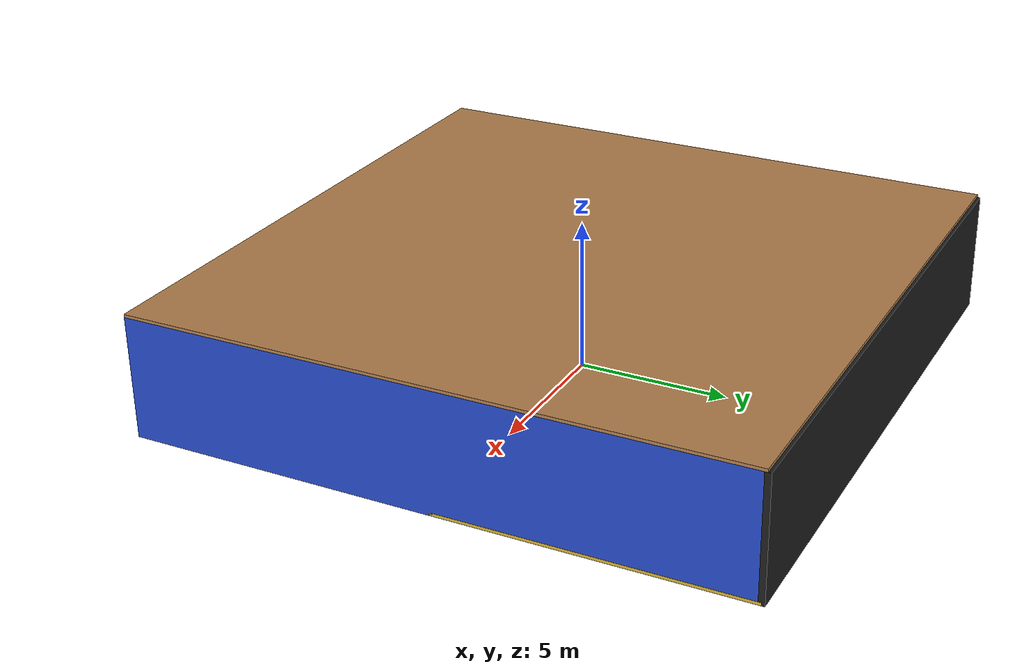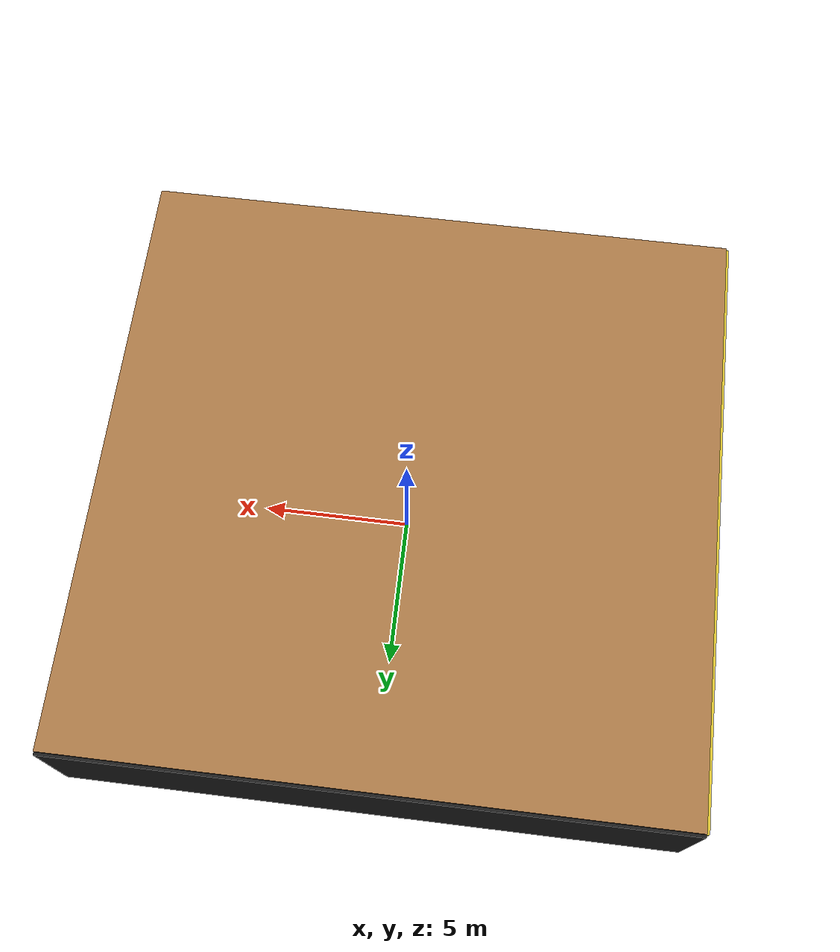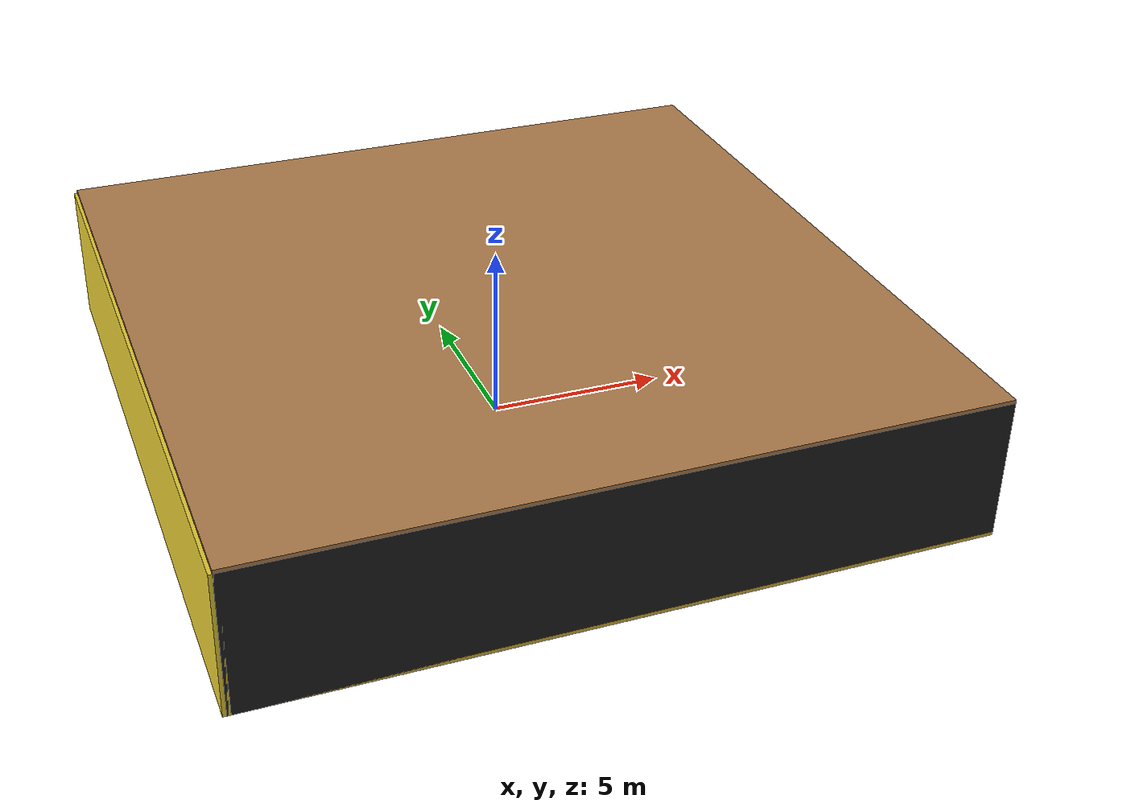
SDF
<sdf version="1.4">
 <world name="default">
  <physics type="ode">
   <max_step_size>0.001</max_step_size>
   <real_time_factor>1</real_time_factor>
   <real_time_update_rate>1000</real_time_update_rate>
   <gravity>0 0 -9.8</gravity>
  </physics>
  <scene><ambient>0.4 0.4 0.4 1</ambient><background>0.7 0.7 0.7 1</background><shadows>1</shadows></scene>
  <model name="Surrounding">
   <static>1</static>
   <link name="Ceiling">
    <collision name="Ceiling_Collision"><geometry><box><size>20 20 0.1</size></box></geometry></collision>
    <visual name="Ceiling_Visual">
     <geometry><box><size>20 20 0.1</size></box></geometry>
     <material>
      <script><uri>file://media/materials/scripts/gazebo.material</uri><name>Gazebo/Wood</name></script>
     </material>
    </visual>
    <pose>0 0 4.05 0 0 0</pose>
   </link>
   <link name="Wall_South">
    <collision name="Wall_South_Collision">
     <geometry><box><size>20 0 4</size></box></geometry>
     <pose>0 0 2 0 -0 0</pose>
    </collision>
    <visual name="Wall_South_Visual">
     <pose>0 0 2 0 -0 0</pose>
     <geometry><box><size>20 0 4</size></box></geometry>
     <material>
      <script><uri>file://media/materials/scripts/gazebo.material</uri><name>Gazebo/FlatBlack</name></script>
     </material>
    </visual>
    <velocity_decay><linear>0</linear><angular>0</angular></velocity_decay>
    <pose>0 -10 0 0 -0 0</pose>
   </link>
   <link name="Wall_East">
    <collision name="Wall_21_Collision">
     <geometry><box><size>20 0 4</size></box></geometry>
     <pose>0 0 2 0 -0 0</pose>
    </collision>
    <visual name="Wall_21_Visual">
     <pose>0 0 2 0 -0 0</pose>
     <geometry><box><size>20 0 4</size></box></geometry>
     <material>
      <script><uri>file://media/materials/scripts/gazebo.material</uri><name>Gazebo/BlueLaser</name></script>
     </material>
    </visual>
    <velocity_decay><linear>0</linear><angular>0</angular></velocity_decay>
    <pose>10 0 0 0 -0 1.5708</pose>
   </link>
   <link name="Wall_North">
    <collision name="Wall_22_Collision">
     <geometry><box><size>20 0.2 4</size></box></geometry>
     <pose>0 0 2 0 -0 0</pose>
    </collision>
    <visual name="Wall_22_Visual">
     <pose>0 0 2 0 -0 0</pose>
     <geometry><box><size>20 0.2 4</size></box></geometry>
     <material>
      <script><uri>file://media/materials/scripts/gazebo.material</uri><name>Gazebo/Black</name></script>
     </material>
    </visual>
    <velocity_decay><linear>0</linear><angular>0</angular></velocity_decay>
    <pose>0 10 0 0 -0 0</pose>
   </link>
   <link name="Wall_West">
    <collision name="Wall_23_Collision">
     <geometry><box><size>20 0.2 4</size></box></geometry>
     <pose>0 0 2 0 -0 0</pose>
    </collision>
    <visual name="Wall_23_Visual">
     <pose>0 0 2 0 -0 0</pose>
     <geometry><box><size>20 0.2 4</size></box></geometry>
     <material>
      <script><uri>file://media/materials/scripts/gazebo.material</uri><name>Gazebo/ZincYellow</name></script>
     </material>
    </visual>
    <velocity_decay><linear>0</linear><angular>0</angular></velocity_decay>
    <pose>-10 0 0 0 0 -1.5708</pose>
   </link>
   <link name="Ground_link">
    <collision name="collision">
     <pose>0 0 .05 0 -0 0</pose>
     <geometry><box><size>20 20 0.1</size></box></geometry>
    </collision>
    <visual name="visual">
     <pose>0 0 .05 0 -0 0</pose>
     <geometry><box><size>20 20 0.1</size></box></geometry>
     <material>
      <script><uri>file://media/materials/scripts/gazebo.material</uri><name>Gazebo/Gold</name></script>
     </material>
    </visual>
   </link>
   <static>1</static>
  </model>
  <spherical_coordinates>
   <surface_model>EARTH_WGS84</surface_model>
   <latitude_deg>0</latitude_deg>
   <longitude_deg>0</longitude_deg>
   <elevation>0</elevation>
   <heading_deg>0</heading_deg>
  </spherical_coordinates>
  <light name="lightball_0" type="diffuse">
   <diffuse>0.8 0.8 0.8 1</diffuse>
   <specular>0.2 0.2 0.2 1</specular>
   <attenuation>
    <range>100</range>
    <constant>0.7</constant>
    <linear>0.01</linear>
    <quadratic>0.001</quadratic>
   </attenuation>
   <direction>-0.5 0.1 -0.9</direction>
   <pose>0.601257638304 -1.1249035366 0.713054447373 0 0 0</pose>
  </light>
  <light name="lightball_1" type="diffuse">
   <diffuse>0.8 0.8 0.8 1</diffuse>
   <specular>0.2 0.2 0.2 1</specular>
   <attenuation>
    <range>100</range>
    <constant>0.7</constant>
    <linear>0.01</linear>
    <quadratic>0.001</quadratic>
   </attenuation>
   <direction>-0.5 0.1 -0.9</direction>
   <pose>2.07753472512 7.84640433807 2.03712075737 0 0 0</pose>
  </light>
  <light name="lightball_2" type="diffuse">
   <diffuse>0.8 0.8 0.8 1</diffuse>
   <specular>0.2 0.2 0.2 1</specular>
   <attenuation>
    <range>100</range>
    <constant>0.7</constant>
    <linear>0.01</linear>
    <quadratic>0.001</quadratic>
   </attenuation>
   <direction>-0.5 0.1 -0.9</direction>
   <pose>3.55529601674 -3.44534934964 1.08589354387 0 0 0</pose>
  </light>
  <light name="lightball_3" type="diffuse">
   <diffuse>0.8 0.8 0.8 1</diffuse>
   <specular>0.2 0.2 0.2 1</specular>
   <attenuation>
    <range>100</range>
    <constant>0.7</constant>
    <linear>0.01</linear>
    <quadratic>0.001</quadratic>
   </attenuation>
   <direction>-0.5 0.1 -0.9</direction>
   <pose>7.1232265305 9.28100820415 2.77369148435 0 0 0</pose>
  </light>
  <light name="lightball_4" type="diffuse">
   <diffuse>0.8 0.8 0.8 1</diffuse>
   <specular>0.2 0.2 0.2 1</specular>
   <attenuation>
    <range>100</range>
    <constant>0.7</constant>
    <linear>0.01</linear>
    <quadratic>0.001</quadratic>
   </attenuation>
   <direction>-0.5 0.1 -0.9</direction>
   <pose>-6.26456457899 3.49975045407 1.6484948291 0 0 0</pose>
  </light>
  <light name="lightball_5" type="diffuse">
   <diffuse>0.8 0.8 0.8 1</diffuse>
   <specular>0.2 0.2 0.2 1</specular>
   <attenuation>
    <range>100</range>
    <constant>0.7</constant>
    <linear>0.01</linear>
    <quadratic>0.001</quadratic>
   </attenuation>
   <direction>-0.5 0.1 -0.9</direction>
   <pose>-1.20062926159 -9.35260276458 3.88008102679 0 0 0</pose>
  </light>
  <light name="lightball_6" type="diffuse">
   <diffuse>0.8 0.8 0.8 1</diffuse>
   <specular>0.2 0.2 0.2 1</specular>
   <attenuation>
    <range>100</range>
    <constant>0.7</constant>
    <linear>0.01</linear>
    <quadratic>0.001</quadratic>
   </attenuation>
   <direction>-0.5 0.1 -0.9</direction>
   <pose>5.68445677559 7.80540966846 0.897066516601 0 0 0</pose>
  </light>
  <light name="lightball_7" type="diffuse">
   <diffuse>0.8 0.8 0.8 1</diffuse>
   <specular>0.2 0.2 0.2 1</specular>
   <attenuation>
    <range>100</range>
    <constant>0.7</constant>
    <linear>0.01</linear>
    <quadratic>0.001</quadratic>
   </attenuation>
   <direction>-0.5 0.1 -0.9</direction>
   <pose>2.92602773049 5.98807441221 3.55514163373 0 0 0</pose>
  </light>
  <light name="lightball_8" type="diffuse">
   <diffuse>0.8 0.8 0.8 1</diffuse>
   <specular>0.2 0.2 0.2 1</specular>
   <attenuation>
    <range>100</range>
    <constant>0.7</constant>
    <linear>0.01</linear>
    <quadratic>0.001</quadratic>
   </attenuation>
   <direction>-0.5 0.1 -0.9</direction>
   <pose>2.88687665933 -6.41791595892 2.59749693886 0 0 0</pose>
  </light>
  <light name="lightball_9" type="diffuse">
   <diffuse>0.8 0.8 0.8 1</diffuse>
   <specular>0.2 0.2 0.2 1</specular>
   <attenuation>
    <range>100</range>
    <constant>0.7</constant>
    <linear>0.01</linear>
    <quadratic>0.001</quadratic>
   </attenuation>
   <direction>-0.5 0.1 -0.9</direction>
   <pose>-6.52759118307 1.24528809024 2.23597856253 0 0 0</pose>
  </light>
  <light name="lightball_10" type="diffuse">
   <diffuse>0.8 0.8 0.8 1</diffuse>
   <specular>0.2 0.2 0.2 1</specular>
   <attenuation>
    <range>100</range>
    <constant>0.7</constant>
    <linear>0.01</linear>
    <quadratic>0.001</quadratic>
   </attenuation>
   <direction>-0.5 0.1 -0.9</direction>
   <pose>8.43685992706 -2.90907939087 1.58763336332 0 0 0</pose>
  </light>
  <light name="lightball_11" type="diffuse">
   <diffuse>0.8 0.8 0.8 1</diffuse>
   <specular>0.2 0.2 0.2 1</specular>
   <attenuation>
    <range>100</range>
    <constant>0.7</constant>
    <linear>0.01</linear>
    <quadratic>0.001</quadratic>
   </attenuation>
   <direction>-0.5 0.1 -0.9</direction>
   <pose>5.4321790647 2.47476748717 1.50095690968 0 0 0</pose>
  </light>
  <light name="lightball_12" type="diffuse">
   <diffuse>0.8 0.8 0.8 1</diffuse>
   <specular>0.2 0.2 0.2 1</specular>
   <attenuation>
    <range>100</range>
    <constant>0.7</constant>
    <linear>0.01</linear>
    <quadratic>0.001</quadratic>
   </attenuation>
   <direction>-0.5 0.1 -0.9</direction>
   <pose>-4.03033819009 9.3634324359 2.65544577672 0 0 0</pose>
  </light>
  <light name="lightball_13" type="diffuse">
   <diffuse>0.8 0.8 0.8 1</diffuse>
   <specular>0.2 0.2 0.2 1</specular>
   <attenuation>
    <range>100</range>
    <constant>0.7</constant>
    <linear>0.01</linear>
    <quadratic>0.001</quadratic>
   </attenuation>
   <direction>-0.5 0.1 -0.9</direction>
   <pose>4.35337405471 -0.539744040192 2.89282109269 0 0 0</pose>
  </light>
  <include><uri>model://cabinet</uri><pose>-6.78891245727 -7.13493906476 0 0 0 0.222836689624</pose></include>
  <include><uri>model://cabinet</uri><pose>4.70191741996 4.64500847277 0 0 0 0.368472493774</pose></include>
  <include><uri>model://cabinet</uri><pose>6.89176404433 0.911903784787 0 0 0 0.775513031677</pose></include>
 </world>
</sdf>

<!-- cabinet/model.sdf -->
<sdf version="1.5">
  <model name="cabinet">
    <static>true</static>
    <link name="cabinet_bottom_plate">
      <inertial>
        <pose>0 0 -1 0 0 0</pose>
        <inertia>
          <ixx>2.050000</ixx>
          <ixy>0</ixy>
          <ixz>0</ixz>
          <iyy>2.050000</iyy>
          <iyz>0</iyz>
          <izz>2.050000</izz>
        </inertia>
        <mass>25.000000</mass>
      </inertial>
      <collision name="cabinet_bottom_plate_geom">
        <pose>0 0 0.010000 0 0 0</pose>
        <geometry>
          <box>
            <size>0.450000 0.450000 0.020000</size>
          </box>
        </geometry>
      </collision>
      <visual name="cabinet_bottom_plate_geom_visual">
        <pose>0 0 0.010000 0 0 0</pose>
        <geometry>
          <box>
            <size>0.450000 0.450000 0.020000</size>
          </box>
        </geometry>
        <material>
          <script>
            <uri>model://media/materials/scripts/gazebo.material</uri>
            <name>Gazebo/Wood</name>
          </script>
        </material>
      </visual>
      <collision name="cabinet_bottom_plate_geom_cabinet_back_plate">
        <pose>0.235000 0 0.510000 0 0 0</pose>
        <geometry>
          <box>
            <size>0.020000 0.450000 1.020000</size>
          </box>
        </geometry>
      </collision>
      <visual name="cabinet_bottom_plate_geom_cabinet_back_plate_visual">
        <pose>0.235000 0 0.510000 0 0 0</pose>
        <geometry>
          <box>
            <size>0.020000 0.450000 1.020000</size>
          </box>
        </geometry>
        <material>
          <script>
            <uri>model://media/materials/scripts/gazebo.material</uri>
            <name>Gazebo/Wood</name>
          </script>
        </material>
      </visual>
      <collision name="cabinet_bottom_plate_geom_cabinet_left_plate">
        <pose>0 0.235000 0.510000 0 0 0</pose>
        <geometry>
          <box>
            <size>0.450000 0.020000 1.020000</size>
          </box>
        </geometry>
      </collision>
      <visual name="cabinet_bottom_plate_geom_cabinet_left_plate_visual">
        <pose>0 0.235000 0.510000 0 0 0</pose>
        <geometry>
          <box>
            <size>0.450000 0.020000 1.020000</size>
          </box>
        </geometry>
        <material>
          <script>
            <uri>model://media/materials/scripts/gazebo.material</uri>
            <name>Gazebo/Wood</name>
          </script>
        </material>
      </visual>
      <collision name="cabinet_bottom_plate_geom_cabinet_middle_plate">
        <pose>0 0 0.510000 0 0 0</pose>
        <geometry>
          <box>
            <size>0.450000 0.450000 0.020000</size>
          </box>
        </geometry>
      </collision>
      <visual name="cabinet_bottom_plate_geom_cabinet_middle_plate_visual">
        <pose>0 0 0.510000 0 0 0</pose>
        <geometry>
          <box>
            <size>0.450000 0.450000 0.020000</size>
          </box>
        </geometry>
        <material>
          <script>
            <uri>model://media/materials/scripts/gazebo.material</uri>
            <name>Gazebo/Wood</name>
          </script>
        </material>
      </visual>
      <collision name="cabinet_bottom_plate_geom_cabinet_right_plate">
        <pose>0 -0.235000 0.510000 0 0 0</pose>
        <geometry>
          <box>
            <size>0.450000 0.020000 1.020000</size>
          </box>
        </geometry>
      </collision>
      <visual name="cabinet_bottom_plate_geom_cabinet_right_plate_visual">
        <pose>0 -0.235000 0.510000 0 0 0</pose>
        <geometry>
          <box>
            <size>0.450000 0.020000 1.020000</size>
          </box>
        </geometry>
        <material>
          <script>
            <uri>model://media/materials/scripts/gazebo.material</uri>
            <name>Gazebo/Wood</name>
          </script>
        </material>
      </visual>
      <collision name="cabinet_bottom_plate_geom_cabinet_top_plate">
        <pose>0 0 1.010000 0 0 0</pose>
        <geometry>
          <box>
            <size>0.450000 0.450000 0.020000</size>
          </box>
        </geometry>
      </collision>
      <visual name="cabinet_bottom_plate_geom_cabinet_top_plate_visual">
        <pose>0 0 1.010000 0 0 0</pose>
        <geometry>
          <box>
            <size>0.450000 0.450000 0.020000</size>
          </box>
        </geometry>
        <material>
          <script>
            <uri>model://media/materials/scripts/gazebo.material</uri>
            <name>Gazebo/Wood</name>
          </script>
        </material>
      </visual>
    </link>
  </model>
</sdf>
